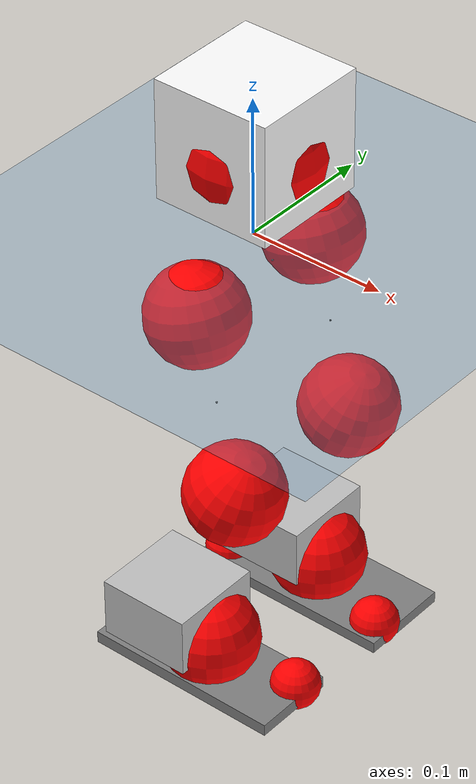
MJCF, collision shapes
<mujoco model="pi_12dof_release_v1">
  <compiler angle="radian" assetdir="assets" balanceinertia="true" inertiafromgeom="false"/>

  <option timestep="0.005" density="1.2" viscosity="2e-05"/>

  <size nkey="1"/>

  <visual>
    <quality shadowsize="8192"/>
    <map shadowclip="0.5"/>
  </visual>

  <default>
    <default class="/">
      <joint armature="0.01" damping="0.01" frictionloss="0.01"/>
      <geom contype="0" conaffinity="0" group="1" solref="-1000 -80"/>
      <site size="0.01 0.005 0.005" group="5"/>
      <general forcelimited="true" biastype="affine" gainprm="20" biasprm="0 -20 -0.5"/>
      <default class="foot">
        <geom size="0.0845 0.036 0.005" type="box" condim="6" group="4" priority="1" friction="0.9 0.2 0.2" solimp="0.015 1 0.005"/>
      </default>
      <default class="reward_collision_sphere">
        <geom group="5" rgba="1 0 0 1"/>
      </default>
    </default>
  </default>

  <asset>
    <texture type="skybox" colorspace="auto" name="//unnamed_texture_0" builtin="gradient" rgb1="0.95 0.95 0.95" rgb2="0.95 0.95 0.95" width="100" height="600"/>
    <texture type="2d" colorspace="auto" name="texplane" builtin="checker" rgb1="0.345 0.575 0.748" rgb2="0.345 0.575 0.748" markrgb="1 1 1" width="512" height="512"/>
    <material name="MatPlane" class="/" texture="texplane" texuniform="true" texrepeat="2 2" specular="0.9"/>
    <mesh name="baselink_1" class="/" file="baselink_1.STL"/>
    <mesh name="r_hip_pitch_link" class="/" file="r_hip_pitch_link.STL"/>
    <mesh name="r_hip_roll_link" class="/" file="r_hip_roll_link.STL"/>
    <mesh name="r_thigh_link" class="/" file="r_thigh_link.STL"/>
    <mesh name="r_calf_link" class="/" file="r_calf_link.STL"/>
    <mesh name="r_ankle_pitch_link" class="/" file="r_ankle_pitch_link.STL"/>
    <mesh name="r_ankle_roll_link" class="/" file="r_ankle_roll_link.STL"/>
    <mesh name="l_hip_pitch_link" class="/" file="l_hip_pitch_link.STL"/>
    <mesh name="l_hip_roll_link" class="/" file="l_hip_roll_link.STL"/>
    <mesh name="l_thigh_link" class="/" file="l_thigh_link.STL"/>
    <mesh name="l_calf_link" class="/" file="l_calf_link.STL"/>
    <mesh name="l_ankle_pitch_link" class="/" file="l_ankle_pitch_link.STL"/>
    <mesh name="l_ankle_roll_link" class="/" file="l_ankle_roll_link.STL"/>
  </asset>

  <worldbody>
    <geom name="floor" class="/" size="100 100 0.125" type="plane" group="0" material="MatPlane"/>
    <light name="toplight_shadow" class="/" pos="0 0 5" dir="0.0990148 0.0990148 -0.990148" type="directional" ambient="0.04 0.04 0.04" diffuse="0.55 0.55 0.55" specular="0.12 0.12 0.12"/>
    <light name="toplight_fill" class="/" pos="0 0 5" dir="0.0990148 0.0990148 -0.990148" type="directional" castshadow="false" ambient="0.04 0.04 0.04" diffuse="0.3 0.3 0.3" specular="0.08 0.08 0.08"/>
    <body name="trunk" pos="0.0016166 1.42158e-05 0.000961187" quat="1 0.000341603 0.000412482 0.00015164">
      <inertial pos="0.000736876 -0.00156655 0.0369412" quat="0.695074 0.0085352 0.0111866 0.7188" mass="1.39154" diaginertia="0.00751788 0.00199973 0.00279423"/>
      <joint name="//unnamed_joint_0" type="free"/>
      <geom name="//unnamed_geom_1" class="/" type="mesh" density="0" rgba="1 1 1 1" mesh="baselink_1"/>
      <geom name="//unnamed_geom_2" class="/" size="0.0436646 0.0436646 0.0436646" pos="0 0 0.0741755" type="box" rgba="1 1 1 1"/>
      <geom name="//unnamed_geom_3" class="reward_collision_sphere" size="0.0480311" pos="0 0 0.0649036"/>
      <site name="imu" class="/" pos="-0.00065123 -0.00433377 0.00468901" size="0.00873292"/>
      <camera name="track" class="/" pos="0 -1.48354 0" quat="0.707107 0.707107 0 0" mode="trackcom"/>
      <camera name="ego_camera" class="/" pos="0.0713183 0 0.166895" quat="-0.5 -0.5 0.5 0.5"/>
      <body name="r_hip_pitch_link" pos="0.000276608 -0.0167209 -0.0312526" quat="0.992133 -0.000312593 -0.125185 4.74571e-05">
        <inertial pos="0.00115379 -0.0418086 1.63713e-05" quat="-0.0200901 0.705158 -0.0280008 0.708212" mass="0.249967" diaginertia="8.63333e-05 2.18185e-05 5.68314e-05"/>
        <joint name="r_hip_pitch_joint" class="/" pos="0 0 0" axis="-2.17515e-05 -1 -4.04247e-05" stiffness="0.00309869" range="-1.72931 1.25987" armature="0.00886783" damping="0.0152842" frictionloss="0.00869181"/>
        <geom name="//unnamed_geom_4" class="/" type="mesh" density="0" rgba="0.75294 0.75294 0.75294 1" mesh="r_hip_pitch_link"/>
        <geom name="//unnamed_geom_5" class="/" size="0.000436646 0.000436646 0.000436646" type="box" rgba="0.75294 0.75294 0.75294 1"/>
        <body name="r_hip_roll_link" pos="-0.000741621 -0.0403088 -0.00020581" quat="1 -0.000107594 -2.05314e-05 -9.79181e-05">
          <inertial pos="-0.00106257 0.000221465 -0.0582597" quat="0.705969 -0.0791078 -0.0825463 0.698953" mass="0.259682" diaginertia="0.000257223 6.25977e-05 9.00904e-05"/>
          <joint name="r_hip_roll_joint" class="/" pos="0 0 0" axis="-1 0.000161565 -8.92657e-05" range="-0.118639 0.500872" armature="0.00912801" damping="0" frictionloss="0.00892405"/>
          <geom name="//unnamed_geom_6" class="/" type="mesh" density="0" rgba="0.75294 0.75294 0.75294 1" mesh="r_hip_roll_link"/>
          <geom name="//unnamed_geom_7" class="/" size="0.000436646 0.000436646 0.000436646" type="box" rgba="0.75294 0.75294 0.75294 1"/>
          <geom name="//unnamed_geom_8" class="reward_collision_sphere" size="0.0349317"/>
          <body name="r_thigh_link" pos="-0.000302315 -3.77118e-05 -0.0634647" quat="1 -0.000197703 0.00021662 9.87076e-05">
            <inertial pos="0.000143504 0.000552073 -0.0444784" quat="0.7364 0.676534 0.000100953 0.00408552" mass="0.0750927" diaginertia="0.000100168 2.15627e-05 4.03317e-05"/>
            <joint name="r_thigh_joint" class="/" pos="0 0 0" axis="0.000280172 0.000415524 -1" range="-0.305415 0.578546" armature="0.00902901" damping="0.00375289" frictionloss="0.00801623"/>
            <geom name="//unnamed_geom_9" class="/" type="mesh" density="0" rgba="0.75294 0.75294 0.75294 1" mesh="r_thigh_link"/>
            <geom name="//unnamed_geom_10" class="/" size="0.000436646 0.000436646 0.000436646" type="box" rgba="0.75294 0.75294 0.75294 1"/>
            <body name="r_calf_link" pos="-0.000319478 -0.00193412 -0.0663277" quat="0.947671 3.92608e-06 0.319248 -5.90808e-06">
              <inertial pos="-0.00126272 -0.00131961 -0.0649346" quat="0.999976 -0.00392729 -0.00189645 0.00539361" mass="0.540996" diaginertia="0.00276714 0.000793467 0.00012166"/>
              <joint name="r_calf_joint" class="/" pos="0 0 0" axis="0.00106319 -0.999999 0.000736013" range="-1.62167 0.640386" armature="0.00856325" damping="0.0100981" frictionloss="0.0087394"/>
              <geom name="//unnamed_geom_11" class="/" type="mesh" density="0" rgba="0.75294 0.75294 0.75294 1" mesh="r_calf_link"/>
              <geom name="//unnamed_geom_12" class="/" size="0.000436646 0.000436646 0.000436646" type="box" rgba="0.75294 0.75294 0.75294 1"/>
              <geom name="//unnamed_geom_13" class="reward_collision_sphere" size="0.0349317"/>
              <body name="r_ankle_pitch_link" pos="-2.88645e-05 -0.000301696 -0.129651" quat="0.980071 4.06303e-05 -0.198649 -6.69993e-05">
                <inertial pos="0.00377268 0.002658 -0.000639034" quat="0.000104919 0.707479 -0.0035921 0.706725" mass="0.117627" diaginertia="0.00024137 5.07653e-05 8.35394e-05"/>
                <joint name="r_ankle_pitch_joint" class="/" pos="0 0 0" axis="-0.00462446 -0.999989 0.000612756" range="-1.31739 0.501781" armature="0.00871" damping="0.00646318" frictionloss="0.00837959"/>
                <geom name="//unnamed_geom_14" class="/" type="mesh" density="0" rgba="0.75294 0.75294 0.75294 1" mesh="r_ankle_pitch_link"/>
                <geom name="//unnamed_geom_15" class="/" size="0.0340584 0.0349317 0.0218323" type="box" rgba="0.75294 0.75294 0.75294 1"/>
                <body name="r_ankle_roll_link" pos="0.0730665 0.00331044 0.000651977" quat="1 -4.47051e-08 -1.71695e-08 -4.83203e-08">
                  <inertial pos="-0.0228711 0.000166343 -0.0133572" quat="0.558612 0.433704 0.431549 0.560017" mass="0.346627" diaginertia="0.000878908 0.000231457 0.00019451"/>
                  <joint name="r_ankle_roll_joint" class="/" pos="0 0 0" axis="-0.999966 -0.00580922 -0.00586359" range="-0.173016 0.150181" armature="0.00913551" damping="0.00465844" frictionloss="0.00864297"/>
                  <geom name="//unnamed_geom_16" class="/" type="mesh" density="0" rgba="0.75294 0.75294 0.75294 1" mesh="r_ankle_roll_link"/>
                  <geom name="//unnamed_geom_17" class="/" type="mesh" rgba="0.75294 0.75294 0.75294 1" mesh="r_ankle_roll_link"/>
                  <geom name="right_foot" class="foot" size="0.0734188 0.0308771 0.00441114" pos="-0.0484964 0 -0.0407965"/>
                  <geom name="//unnamed_geom_19" class="reward_collision_sphere" size="0.0349317" pos="-0.0475455 0 -0.0185439"/>
                  <geom name="//unnamed_geom_20" class="reward_collision_sphere" size="0.0174658" pos="0.0142637 0.0148354 -0.0370878"/>
                  <geom name="//unnamed_geom_21" class="reward_collision_sphere" size="0.0174658" pos="-0.114109 0.0148354 -0.0370878"/>
                  <site name="right_foot" class="foot" pos="-0.0484964 0 -0.0407965" size="0.00873292"/>
                </body>
              </body>
            </body>
          </body>
        </body>
      </body>
      <body name="l_hip_pitch_link" pos="-9.04401e-05 0.0170619 -0.0303543" quat="0.992215 -3.94506e-05 -0.124535 4.9003e-05">
        <inertial pos="2.81035e-05 0.0410404 8.25914e-05" quat="-0.0456253 0.708897 0.0289419 0.703239" mass="0.264253" diaginertia="0.000100343 2.3753e-05 7.00709e-05"/>
        <joint name="l_hip_pitch_joint" class="/" pos="0 0 0" axis="0.00578558 0.999979 -0.0027482" range="-1.26273 1.74861" armature="0.00865092" damping="0.00613079" frictionloss="0.00867196"/>
        <geom name="//unnamed_geom_22" class="/" type="mesh" density="0" rgba="0.75294 0.75294 0.75294 1" mesh="l_hip_pitch_link"/>
        <geom name="//unnamed_geom_23" class="/" size="0.000436646 0.000436646 0.000436646" type="box" rgba="0.75294 0.75294 0.75294 1"/>
        <body name="l_hip_roll_link" pos="0.000115219 0.0408586 0.000887913" quat="1 -6.90606e-05 -0.000205152 -0.000114165">
          <inertial pos="-0.00133973 -0.000224983 -0.0563812" quat="0.697954 -0.0757753 -0.0749996 0.708162" mass="0.262348" diaginertia="0.000257412 6.25457e-05 8.72658e-05"/>
          <joint name="l_hip_roll_joint" class="/" pos="0 0 0" axis="-0.999996 0.00152669 0.00242648" range="-0.510053 0.119848" armature="0.00901378" damping="0.00575073" frictionloss="0.00903762"/>
          <geom name="//unnamed_geom_24" class="/" type="mesh" density="0" rgba="0.75294 0.75294 0.75294 1" mesh="l_hip_roll_link"/>
          <geom name="//unnamed_geom_25" class="/" size="0.000436646 0.000436646 0.000436646" type="box" rgba="0.75294 0.75294 0.75294 1"/>
          <geom name="//unnamed_geom_26" class="reward_collision_sphere" size="0.0349317"/>
          <body name="l_thigh_link" pos="5.93622e-05 -0.000888083 -0.065609" quat="1 -0.000167495 3.93975e-05 0.000102396">
            <inertial pos="0.00101708 3.34122e-06 -0.0443442" quat="0.673819 0.738886 -0.00393556 -0.000621885" mass="0.0744905" diaginertia="9.74474e-05 2.1046e-05 3.86257e-05"/>
            <joint name="l_thigh_joint" class="/" pos="0 0 0" axis="0.000405684 -0.00390117 -0.999992" range="-0.606342 0.290571" armature="0.00835865" damping="0" frictionloss="0.00833482"/>
            <geom name="//unnamed_geom_27" class="/" type="mesh" density="0" rgba="0.75294 0.75294 0.75294 1" mesh="l_thigh_link"/>
            <geom name="//unnamed_geom_28" class="/" size="0.000436646 0.000436646 0.000436646" type="box" rgba="0.75294 0.75294 0.75294 1"/>
            <body name="l_calf_link" pos="-0.000546044 0.00128784 -0.0653446" quat="0.94775 0.000206608 0.319013 0.000583101">
              <inertial pos="0.00169777 0.00193591 -0.0666294" quat="0.999991 0.00227188 0.000588079 0.00365054" mass="0.541249" diaginertia="0.00273671 0.000787718 0.000119119"/>
              <joint name="l_calf_joint" class="/" pos="0 0 0" axis="-0.000622031 0.999993 -0.00373958" stiffness="0.00403891" range="-0.660256 1.66815" armature="0.00858858" damping="0.00546813" frictionloss="0.00849513"/>
              <geom name="//unnamed_geom_29" class="/" type="mesh" density="0" rgba="0.75294 0.75294 0.75294 1" mesh="l_calf_link"/>
              <geom name="//unnamed_geom_30" class="/" size="0.000436646 0.000436646 0.000436646" type="box" rgba="0.75294 0.75294 0.75294 1"/>
              <geom name="//unnamed_geom_31" class="reward_collision_sphere" size="0.0349317"/>
              <body name="l_ankle_pitch_link" pos="0.000956201 0.000785331 -0.131389" quat="0.980069 2.8804e-05 -0.198658 -1.19169e-05">
                <inertial pos="0.00416903 -0.000594133 -0.000199081" quat="-0.00217716 0.706723 0.00213502 0.707484" mass="0.116406" diaginertia="0.000237954 4.95345e-05 8.21645e-05"/>
                <joint name="l_ankle_pitch_joint" class="/" pos="0 0 0" axis="0.00118888 0.999998 0.00159166" range="-0.502548 1.31117" armature="0.00868809" damping="0.0102152" frictionloss="0.00831671"/>
                <geom name="//unnamed_geom_32" class="/" type="mesh" density="0" rgba="0.75294 0.75294 0.75294 1" mesh="l_ankle_pitch_link"/>
                <geom name="//unnamed_geom_33" class="/" size="0.0340584 0.0349317 0.0218323" type="box" rgba="0.75294 0.75294 0.75294 1"/>
                <body name="l_ankle_roll_link" pos="0.0723751 1.56559e-05 -0.00101536" quat="1 -1.89941e-05 6.47056e-05 0.000124847">
                  <inertial pos="-0.0235706 -0.000314019 -0.0130638" quat="0.563441 0.428712 0.433154 0.557779" mass="0.346042" diaginertia="0.000872486 0.00023127 0.000195322"/>
                  <joint name="l_ankle_roll_joint" class="/" pos="0 0 0" axis="-0.999984 -0.00554557 -0.00116075" range="-0.149232 0.132922" armature="0.00901279" damping="0.00717689" frictionloss="0.00911983"/>
                  <geom name="//unnamed_geom_34" class="/" type="mesh" density="0" rgba="0.75294 0.75294 0.75294 1" mesh="l_ankle_roll_link"/>
                  <geom name="//unnamed_geom_35" class="/" type="mesh" rgba="0.75294 0.75294 0.75294 1" mesh="l_ankle_roll_link"/>
                  <geom name="left_foot" class="foot" size="0.0772232 0.0343444 0.0042041" pos="-0.0484964 0 -0.0407965"/>
                  <geom name="//unnamed_geom_37" class="reward_collision_sphere" size="0.0349317" pos="-0.0475455 0 -0.0185439"/>
                  <geom name="//unnamed_geom_38" class="reward_collision_sphere" size="0.0174658" pos="0.0142637 -0.0148354 -0.0370878"/>
                  <geom name="//unnamed_geom_39" class="reward_collision_sphere" size="0.0174658" pos="-0.114109 -0.0148354 -0.0370878"/>
                  <site name="left_foot" class="foot" pos="-0.0484964 0 -0.0407965" size="0.00873292"/>
                </body>
              </body>
            </body>
          </body>
        </body>
      </body>
    </body>
  </worldbody>

  <contact>
    <pair class="/" geom1="floor" geom2="right_foot" name="//unnamed_contact_1"/>
    <pair class="/" geom1="floor" geom2="left_foot" name="//unnamed_contact_0"/>
  </contact>

  <actuator>
    <general name="r_hip_pitch_joint" class="/" joint="r_hip_pitch_joint" forcerange="-18.4846 18.4846" gainprm="17.3796" biasprm="0 -17.3796 -0.426369"/>
    <general name="r_hip_roll_joint" class="/" joint="r_hip_roll_joint" forcerange="-17.8661 17.8661" gainprm="17.3796" biasprm="0 -17.3796 -0.426369"/>
    <general name="r_thigh_joint" class="/" joint="r_thigh_joint" forcerange="-18.0249 18.0249" gainprm="17.3796" biasprm="0 -17.3796 -0.426369"/>
    <general name="r_calf_joint" class="/" joint="r_calf_joint" forcerange="-19.3534 19.3534" gainprm="17.3796" biasprm="0 -17.3796 -0.426369"/>
    <general name="r_ankle_pitch_joint" class="/" joint="r_ankle_pitch_joint" forcerange="-18.5811 18.5811" gainprm="17.3796" biasprm="0 -17.3796 -0.426369"/>
    <general name="r_ankle_roll_joint" class="/" joint="r_ankle_roll_joint" forcerange="-17.6518 17.6518" gainprm="17.3796" biasprm="0 -17.3796 -0.426369"/>
    <general name="l_hip_pitch_joint" class="/" joint="l_hip_pitch_joint" forcerange="-18.2458 18.2458" gainprm="17.3796" biasprm="0 -17.3796 -0.426369"/>
    <general name="l_hip_roll_joint" class="/" joint="l_hip_roll_joint" forcerange="-18.9554 18.9554" gainprm="17.3796" biasprm="0 -17.3796 -0.426369"/>
    <general name="l_thigh_joint" class="/" joint="l_thigh_joint" forcerange="-18.0089 18.0089" gainprm="17.3796" biasprm="0 -17.3796 -0.426369"/>
    <general name="l_calf_joint" class="/" joint="l_calf_joint" forcerange="-18.5414 18.5414" gainprm="17.3796" biasprm="0 -17.3796 -0.426369"/>
    <general name="l_ankle_pitch_joint" class="/" joint="l_ankle_pitch_joint" forcerange="-17.6989 17.6989" gainprm="17.3796" biasprm="0 -17.3796 -0.426369"/>
    <general name="l_ankle_roll_joint" class="/" joint="l_ankle_roll_joint" forcerange="-18.2422 18.2422" gainprm="17.3796" biasprm="0 -17.3796 -0.426369"/>
  </actuator>

  <sensor>
    <gyro site="imu" name="imu_angular_velocity"/>
    <velocimeter site="imu" name="imu_linear_velocity"/>
    <framelinvel objtype="site" objname="left_foot" name="left_foot_global_linear_velocity"/>
    <framelinvel objtype="site" objname="right_foot" name="right_foot_global_linear_velocity"/>
  </sensor>

  <keyframe>
    <key name="home" qpos="0 0 0.291 1 0 0 0 0.4 0 0 -0.8 0.4 0 -0.4 0 0 0.8 -0.4 0"/>
  </keyframe>
</mujoco>
